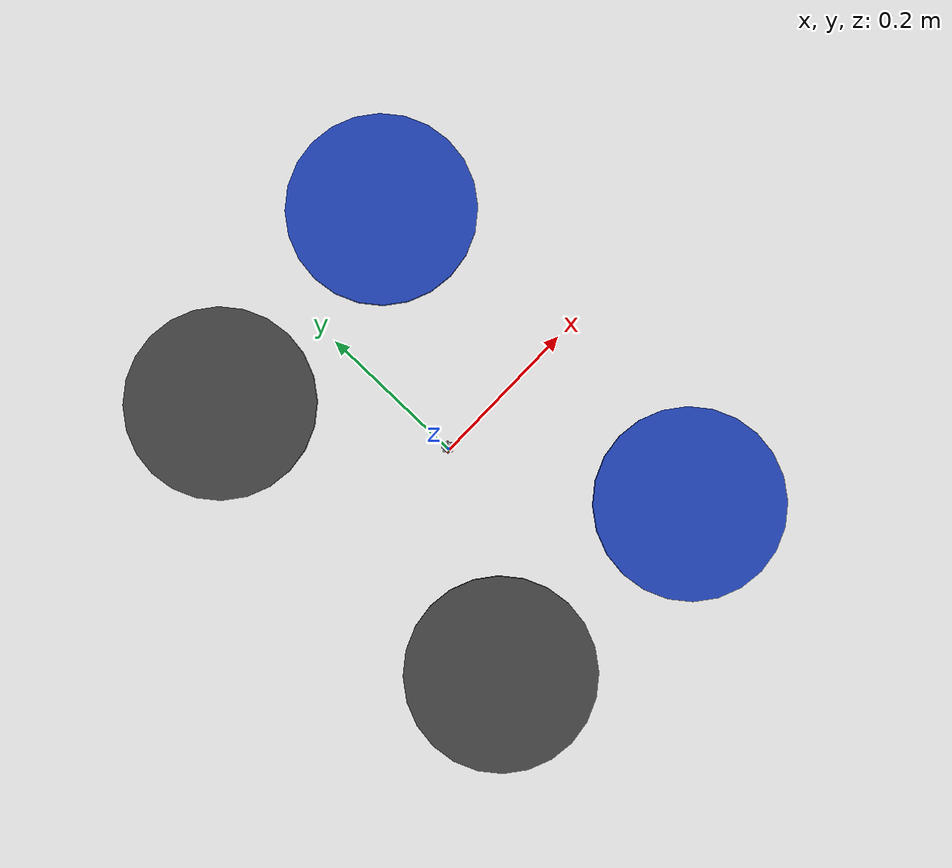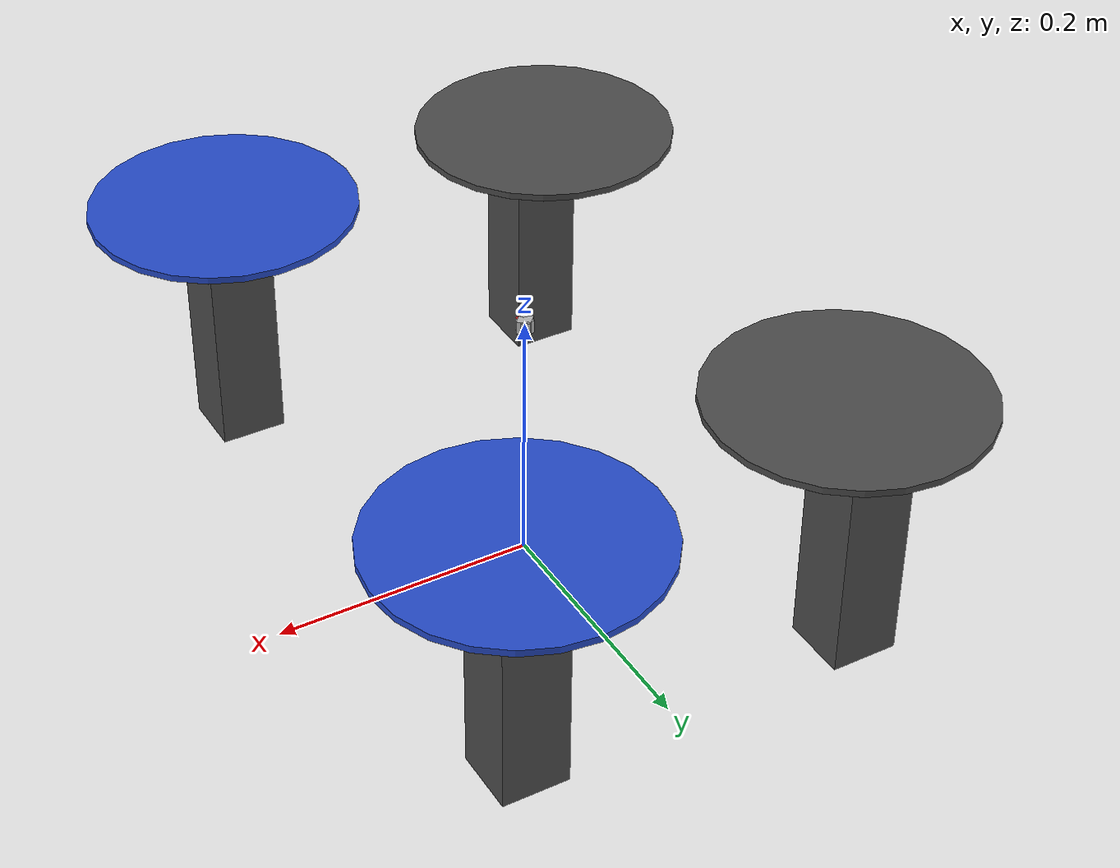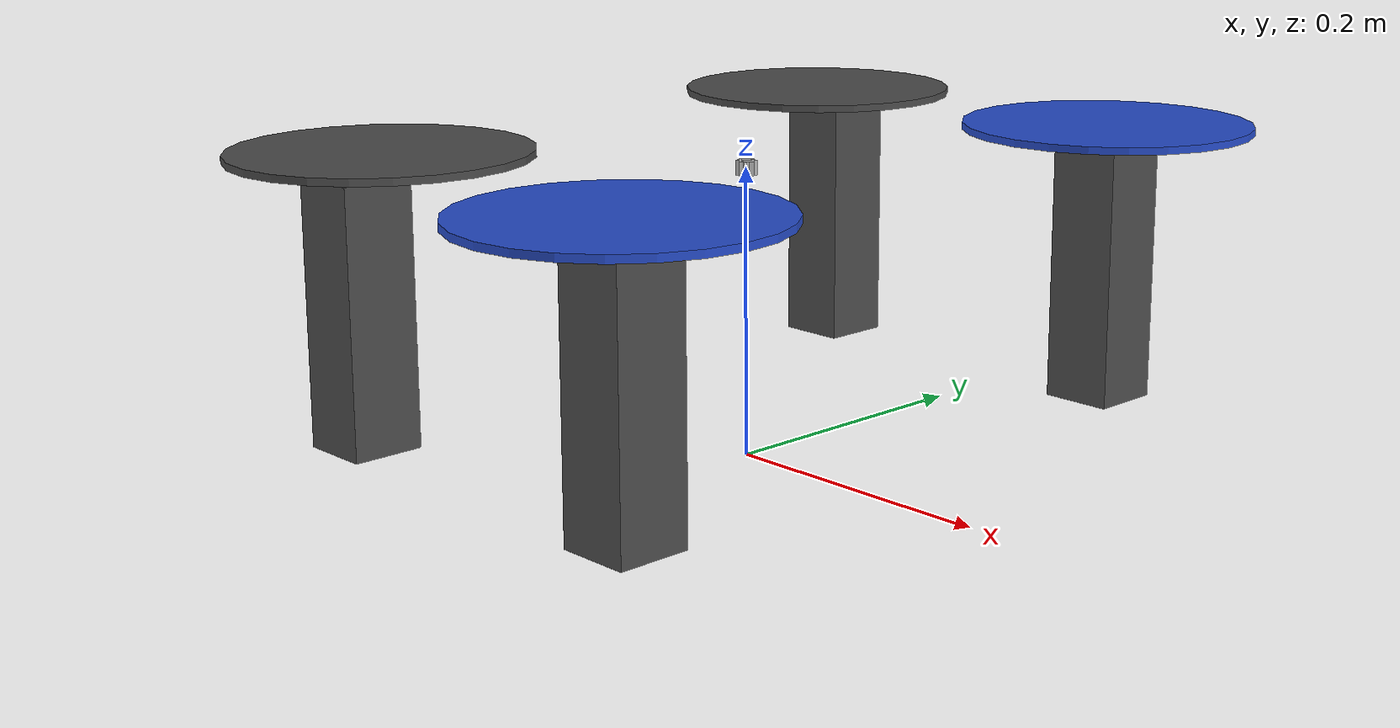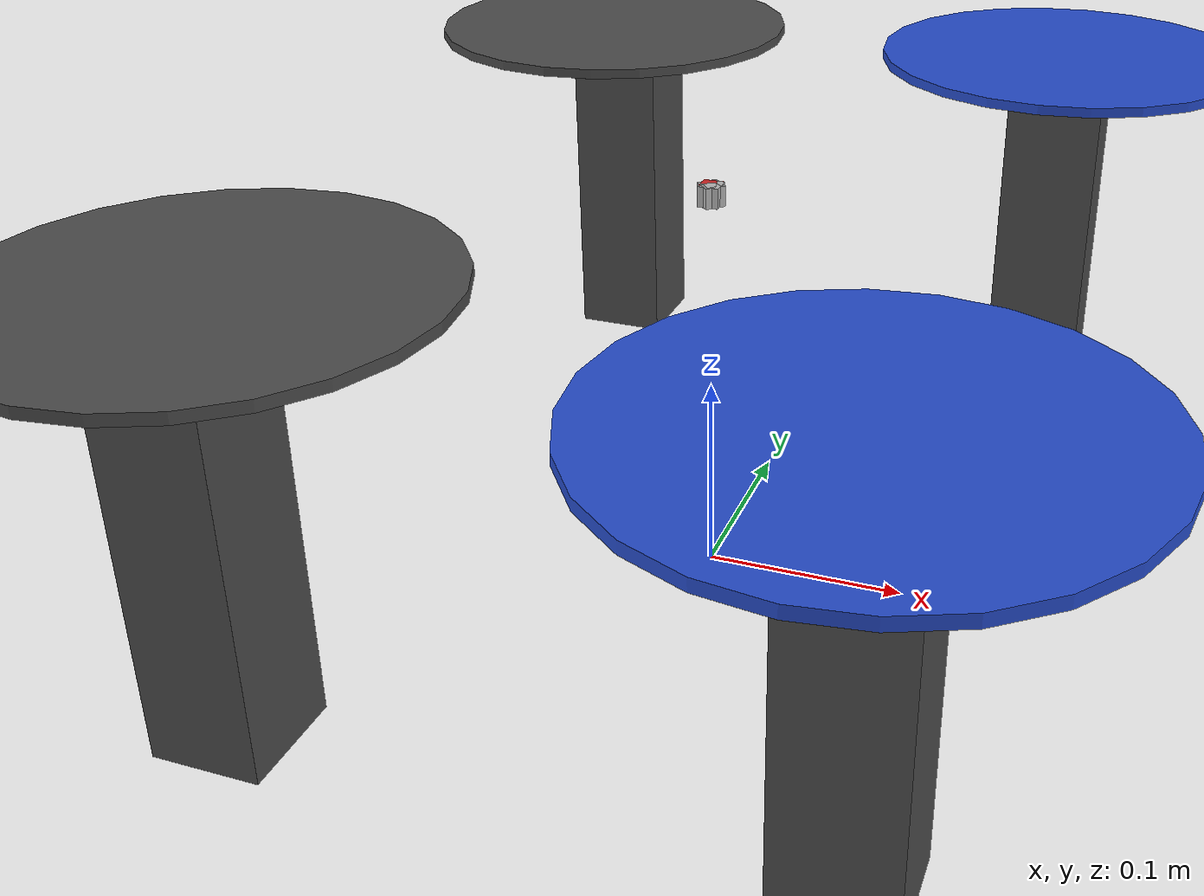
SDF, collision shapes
<?xml version='1.0'?>
<sdf version="1.6" >
  <model name="drone_with_sonar">
    <frame name='iris::__model__' attached_to='iris::base_link'>
        <pose relative_to='__model__'>0 0 0.194923 0 -0 0</pose>
      </frame>
      <link name='iris::base_link'>
        <velocity_decay>
          <linear>0</linear>
          <angular>0</angular>
        </velocity_decay>
        <inertial>
          <pose>0 0 0 0 -0 0</pose>
          <mass>1.5</mass>
          <inertia>
            <ixx>0.008</ixx>
            <ixy>0</ixy>
            <ixz>0</ixz>
            <iyy>0.015</iyy>
            <iyz>0</iyz>
            <izz>0.017</izz>
          </inertia>
        </inertial>
        <collision name='base_link_collision_fl'>
          <pose>0.13 0.22 -0.08 0 -0 0</pose>
          <geometry>
            <box>
              <size>0.05 0.05 0.18</size>
            </box>
          </geometry>
          <surface>
            <contact>
              <ode>
                <max_vel>100</max_vel>
                <min_depth>0.001</min_depth>
              </ode>
            </contact>
            <friction>
              <ode>
                <mu>1</mu>
                <mu2>1</mu2>
              </ode>
              <torsional>
                <ode/>
              </torsional>
            </friction>
            <bounce/>
          </surface>
          <max_contacts>10</max_contacts>
        </collision>
        <collision name='base_link_collision_fr'>
          <pose>0.13 -0.22 -0.08 0 -0 0</pose>
          <geometry>
            <box>
              <size>0.05 0.05 0.18</size>
            </box>
          </geometry>
          <surface>
            <contact>
              <ode>
                <max_vel>100</max_vel>
                <min_depth>0.001</min_depth>
              </ode>
            </contact>
            <friction>
              <ode>
                <mu>1</mu>
                <mu2>1</mu2>
              </ode>
              <torsional>
                <ode/>
              </torsional>
            </friction>
            <bounce/>
          </surface>
          <max_contacts>10</max_contacts>
        </collision>
        <collision name='base_link_collision_br'>
          <pose>-0.13 -0.22 -0.08 0 -0 0</pose>
          <geometry>
            <box>
              <size>0.05 0.05 0.18</size>
            </box>
          </geometry>
          <surface>
            <contact>
              <ode>
                <max_vel>100</max_vel>
                <min_depth>0.001</min_depth>
              </ode>
            </contact>
            <friction>
              <ode>
                <mu>1</mu>
                <mu2>1</mu2>
              </ode>
              <torsional>
                <ode/>
              </torsional>
            </friction>
            <bounce/>
          </surface>
          <max_contacts>10</max_contacts>
        </collision>
        <collision name='base_link_collision_bl'>
          <pose>-0.13 0.22 -0.08 0 -0 0</pose>
          <geometry>
            <box>
              <size>0.05 0.05 0.18</size>
            </box>
          </geometry>
          <surface>
            <contact>
              <ode>
                <max_vel>100</max_vel>
                <min_depth>0.001</min_depth>
              </ode>
            </contact>
            <friction>
              <ode>
                <mu>1</mu>
                <mu2>1</mu2>
              </ode>
              <torsional>
                <ode/>
              </torsional>
            </friction>
            <bounce/>
          </surface>
          <max_contacts>10</max_contacts>
        </collision>
        <visual name='base_link_visual'>
          <geometry>
            <mesh>
              <uri>model://iris_base/meshes/iris.dae</uri>
            </mesh>
          </geometry>
          <material>
            <script>
              <name>Gazebo/DarkGrey</name>
              <uri>__default__</uri>
            </script>
          </material>
        </visual>
        <visual name='front_left_leg_visual'>
          <pose>0.123 0.22 -0.11 0 -0 0</pose>
          <geometry>
            <cylinder>
              <radius>0.005</radius>
              <length>0.17</length>
            </cylinder>
          </geometry>
          <material>
            <script>
              <name>Gazebo/FlatBlack</name>
              <uri>file://media/materials/scripts/gazebo.material</uri>
            </script>
          </material>
        </visual>
        <visual name='front_right_leg_visual'>
          <pose>0.123 -0.22 -0.11 0 -0 0</pose>
          <geometry>
            <cylinder>
              <radius>0.005</radius>
              <length>0.17</length>
            </cylinder>
          </geometry>
          <material>
            <script>
              <name>Gazebo/FlatBlack</name>
              <uri>file://media/materials/scripts/gazebo.material</uri>
            </script>
          </material>
        </visual>
        <visual name='rear_left_leg_visual'>
          <pose>-0.14 0.21 -0.11 0 -0 0</pose>
          <geometry>
            <cylinder>
              <radius>0.005</radius>
              <length>0.17</length>
            </cylinder>
          </geometry>
          <material>
            <script>
              <name>Gazebo/FlatBlack</name>
              <uri>file://media/materials/scripts/gazebo.material</uri>
            </script>
          </material>
        </visual>
        <visual name='rear_right_leg_visual'>
          <pose>-0.14 -0.21 -0.11 0 -0 0</pose>
          <geometry>
            <cylinder>
              <radius>0.005</radius>
              <length>0.17</length>
            </cylinder>
          </geometry>
          <material>
            <script>
              <name>Gazebo/FlatBlack</name>
              <uri>file://media/materials/scripts/gazebo.material</uri>
            </script>
          </material>
        </visual>
        <pose relative_to='iris::__model__'>0 0 0 0 -0 0</pose>
        <self_collide>0</self_collide>
        <enable_wind>0</enable_wind>
        <kinematic>0</kinematic>
      </link>
      <link name='iris::iris/ground_truth/odometry_sensorgt_link'>
        <pose relative_to='iris::__model__'>0 0 0 0 -0 0</pose>
        <inertial>
          <pose>0 0 0 0 -0 0</pose>
          <mass>0.15</mass>
          <inertia>
            <ixx>0.0001</ixx>
            <ixy>0</ixy>
            <ixz>0</ixz>
            <iyy>0.0002</iyy>
            <iyz>0</iyz>
            <izz>0.0002</izz>
          </inertia>
        </inertial>
        <self_collide>0</self_collide>
        <enable_wind>0</enable_wind>
        <kinematic>0</kinematic>
      </link>
      <joint name='iris::iris/ground_truth/odometry_sensorgt_joint' type='revolute'>
        <child>iris::iris/ground_truth/odometry_sensorgt_link</child>
        <parent>iris::base_link</parent>
        <axis>
          <xyz expressed_in='iris::__model__'>0 0 1</xyz>
          <limit>
            <lower>0</lower>
            <upper>0</upper>
            <effort>0</effort>
            <velocity>0</velocity>
          </limit>
          <dynamics>
            <damping>1</damping>
            <spring_reference>0</spring_reference>
            <spring_stiffness>0</spring_stiffness>
          </dynamics>
        </axis>
        <physics>
          <ode>
            <implicit_spring_damper>1</implicit_spring_damper>
            <limit>
              <cfm>0</cfm>
              <erp>0.2</erp>
            </limit>
          </ode>
        </physics>
      </joint>
      <link name='iris::iris/imu_link'>
        <inertial>
          <pose>0 0 0 0 -0 0</pose>
          <mass>0.15</mass>
          <inertia>
            <ixx>1e-05</ixx>
            <ixy>0</ixy>
            <ixz>0</ixz>
            <iyy>2e-05</iyy>
            <iyz>0</iyz>
            <izz>2e-05</izz>
          </inertia>
        </inertial>
        <sensor name='imu_sensor' type='imu'>
          <pose>0 0 0 -3.14159 -0 0</pose>
          <always_on>1</always_on>
          <update_rate>1000</update_rate>
          <imu/>
        </sensor>
        <pose relative_to='iris::__model__'>0 0 0 0 -0 0</pose>
        <self_collide>0</self_collide>
        <enable_wind>0</enable_wind>
        <kinematic>0</kinematic>
      </link>
      <joint name='iris::iris/imu_joint' type='revolute'>
        <child>iris::iris/imu_link</child>
        <parent>iris::base_link</parent>
        <axis>
          <xyz expressed_in='iris::__model__'>0 0 1</xyz>
          <limit>
            <lower>0</lower>
            <upper>0</upper>
            <effort>0</effort>
            <velocity>0</velocity>
          </limit>
          <dynamics>
            <damping>1</damping>
            <spring_reference>0</spring_reference>
            <spring_stiffness>0</spring_stiffness>
          </dynamics>
        </axis>
        <physics>
          <ode>
            <implicit_spring_damper>1</implicit_spring_damper>
            <limit>
              <cfm>0</cfm>
              <erp>0.2</erp>
            </limit>
          </ode>
        </physics>
      </joint>
      <link name='iris::rotor_0'>
        <pose relative_to='iris::__model__'>0.13 -0.22 0.023 0 -0 0</pose>
        <inertial>
          <pose>0 0 0 0 -0 0</pose>
          <mass>0.025</mass>
          <inertia>
            <ixx>9.75e-06</ixx>
            <ixy>0</ixy>
            <ixz>0</ixz>
            <iyy>0.000166704</iyy>
            <iyz>0</iyz>
            <izz>0.000167604</izz>
          </inertia>
        </inertial>
        <collision name='rotor_0_collision'>
          <pose>0 0 0 0 -0 0</pose>
          <geometry>
            <cylinder>
              <length>0.005</length>
              <radius>0.1</radius>
            </cylinder>
          </geometry>
          <surface>
            <contact>
              <ode/>
            </contact>
            <friction>
              <ode/>
              <torsional>
                <ode/>
              </torsional>
            </friction>
            <bounce/>
          </surface>
          <max_contacts>10</max_contacts>
        </collision>
        <visual name='rotor_0_visual'>
          <pose>0 0 0 0 -0 0</pose>
          <geometry>
            <mesh>
              <scale>1 1 1</scale>
              <uri>model://iris_base/meshes/iris_prop_ccw.dae</uri>
            </mesh>
          </geometry>
          <material>
            <script>
              <name>Gazebo/Blue</name>
              <uri>__default__</uri>
            </script>
          </material>
        </visual>
        <gravity>1</gravity>
        <velocity_decay/>
        <self_collide>0</self_collide>
        <enable_wind>0</enable_wind>
        <kinematic>0</kinematic>
      </link>
      <joint name='iris::rotor_0_joint' type='revolute'>
        <child>iris::rotor_0</child>
        <parent>iris::base_link</parent>
        <axis>
          <xyz expressed_in='iris::__model__'>0 0 1</xyz>
          <limit>
            <lower>-1e+16</lower>
            <upper>1e+16</upper>
          </limit>
          <dynamics>
            <damping>0.004</damping>
            <spring_reference>0</spring_reference>
            <spring_stiffness>0</spring_stiffness>
          </dynamics>
        </axis>
        <physics>
          <ode>
            <implicit_spring_damper>1</implicit_spring_damper>
            <limit>
              <cfm>0</cfm>
              <erp>0.2</erp>
            </limit>
          </ode>
        </physics>
      </joint>
      <link name='iris::rotor_1'>
        <pose relative_to='iris::__model__'>-0.13 0.2 0.023 0 -0 0</pose>
        <inertial>
          <pose>0 0 0 0 -0 0</pose>
          <mass>0.025</mass>
          <inertia>
            <ixx>9.75e-06</ixx>
            <ixy>0</ixy>
            <ixz>0</ixz>
            <iyy>0.000166704</iyy>
            <iyz>0</iyz>
            <izz>0.000167604</izz>
          </inertia>
        </inertial>
        <collision name='rotor_1_collision'>
          <pose>0 0 0 0 -0 0</pose>
          <geometry>
            <cylinder>
              <length>0.005</length>
              <radius>0.1</radius>
            </cylinder>
          </geometry>
          <surface>
            <contact>
              <ode/>
            </contact>
            <friction>
              <ode/>
              <torsional>
                <ode/>
              </torsional>
            </friction>
            <bounce/>
          </surface>
          <max_contacts>10</max_contacts>
        </collision>
        <visual name='rotor_1_visual'>
          <pose>0 0 0 0 -0 0</pose>
          <geometry>
            <mesh>
              <scale>1 1 1</scale>
              <uri>model://iris_base/meshes/iris_prop_ccw.dae</uri>
            </mesh>
          </geometry>
          <material>
            <script>
              <name>Gazebo/DarkGrey</name>
              <uri>__default__</uri>
            </script>
          </material>
        </visual>
        <gravity>1</gravity>
        <velocity_decay/>
        <self_collide>0</self_collide>
        <enable_wind>0</enable_wind>
        <kinematic>0</kinematic>
      </link>
      <joint name='iris::rotor_1_joint' type='revolute'>
        <child>iris::rotor_1</child>
        <parent>iris::base_link</parent>
        <axis>
          <xyz expressed_in='iris::__model__'>0 0 1</xyz>
          <limit>
            <lower>-1e+16</lower>
            <upper>1e+16</upper>
          </limit>
          <dynamics>
            <damping>0.004</damping>
            <spring_reference>0</spring_reference>
            <spring_stiffness>0</spring_stiffness>
          </dynamics>
        </axis>
        <physics>
          <ode>
            <implicit_spring_damper>1</implicit_spring_damper>
            <limit>
              <cfm>0</cfm>
              <erp>0.2</erp>
            </limit>
          </ode>
        </physics>
      </joint>
      <link name='iris::rotor_2'>
        <pose relative_to='iris::__model__'>0.13 0.22 0.023 0 -0 0</pose>
        <inertial>
          <pose>0 0 0 0 -0 0</pose>
          <mass>0.025</mass>
          <inertia>
            <ixx>9.75e-06</ixx>
            <ixy>0</ixy>
            <ixz>0</ixz>
            <iyy>0.000166704</iyy>
            <iyz>0</iyz>
            <izz>0.000167604</izz>
          </inertia>
        </inertial>
        <collision name='rotor_2_collision'>
          <pose>0 0 0 0 -0 0</pose>
          <geometry>
            <cylinder>
              <length>0.005</length>
              <radius>0.1</radius>
            </cylinder>
          </geometry>
          <surface>
            <contact>
              <ode/>
            </contact>
            <friction>
              <ode/>
              <torsional>
                <ode/>
              </torsional>
            </friction>
            <bounce/>
          </surface>
          <max_contacts>10</max_contacts>
        </collision>
        <visual name='rotor_2_visual'>
          <pose>0 0 0 0 -0 0</pose>
          <geometry>
            <mesh>
              <scale>1 1 1</scale>
              <uri>model://iris_base/meshes/iris_prop_cw.dae</uri>
            </mesh>
          </geometry>
          <material>
            <script>
              <name>Gazebo/Blue</name>
              <uri>__default__</uri>
            </script>
          </material>
        </visual>
        <gravity>1</gravity>
        <velocity_decay/>
        <self_collide>0</self_collide>
        <enable_wind>0</enable_wind>
        <kinematic>0</kinematic>
      </link>
      <joint name='iris::rotor_2_joint' type='revolute'>
        <child>iris::rotor_2</child>
        <parent>iris::base_link</parent>
        <axis>
          <xyz expressed_in='iris::__model__'>0 0 1</xyz>
          <limit>
            <lower>-1e+16</lower>
            <upper>1e+16</upper>
          </limit>
          <dynamics>
            <damping>0.004</damping>
            <spring_reference>0</spring_reference>
            <spring_stiffness>0</spring_stiffness>
          </dynamics>
        </axis>
        <physics>
          <ode>
            <implicit_spring_damper>1</implicit_spring_damper>
            <limit>
              <cfm>0</cfm>
              <erp>0.2</erp>
            </limit>
          </ode>
        </physics>
      </joint>
      <link name='iris::rotor_3'>
        <pose relative_to='iris::__model__'>-0.13 -0.2 0.023 0 -0 0</pose>
        <inertial>
          <pose>0 0 0 0 -0 0</pose>
          <mass>0.025</mass>
          <inertia>
            <ixx>9.75e-06</ixx>
            <ixy>0</ixy>
            <ixz>0</ixz>
            <iyy>0.000166704</iyy>
            <iyz>0</iyz>
            <izz>0.000167604</izz>
          </inertia>
        </inertial>
        <collision name='rotor_3_collision'>
          <pose>0 0 0 0 -0 0</pose>
          <geometry>
            <cylinder>
              <length>0.005</length>
              <radius>0.1</radius>
            </cylinder>
          </geometry>
          <surface>
            <contact>
              <ode/>
            </contact>
            <friction>
              <ode/>
              <torsional>
                <ode/>
              </torsional>
            </friction>
            <bounce/>
          </surface>
          <max_contacts>10</max_contacts>
        </collision>
        <visual name='rotor_3_visual'>
          <pose>0 0 0 0 -0 0</pose>
          <geometry>
            <mesh>
              <scale>1 1 1</scale>
              <uri>model://iris_base/meshes/iris_prop_cw.dae</uri>
            </mesh>
          </geometry>
          <material>
            <script>
              <name>Gazebo/DarkGrey</name>
              <uri>__default__</uri>
            </script>
          </material>
        </visual>
        <gravity>1</gravity>
        <velocity_decay/>
        <self_collide>0</self_collide>
        <enable_wind>0</enable_wind>
        <kinematic>0</kinematic>
      </link>
      <joint name='iris::rotor_3_joint' type='revolute'>
        <child>iris::rotor_3</child>
        <parent>iris::base_link</parent>
        <axis>
          <xyz expressed_in='iris::__model__'>0 0 1</xyz>
          <limit>
            <lower>-1e+16</lower>
            <upper>1e+16</upper>
          </limit>
          <dynamics>
            <damping>0.004</damping>
            <spring_reference>0</spring_reference>
            <spring_stiffness>0</spring_stiffness>
          </dynamics>
        </axis>
        <physics>
          <ode>
            <implicit_spring_damper>1</implicit_spring_damper>
            <limit>
              <cfm>0</cfm>
              <erp>0.2</erp>
            </limit>
          </ode>
        </physics>
      </joint>
      <static>0</static>
	  <link name='base_sonar_front'>
		<pose>0 0 0.2 0 -0 0</pose>
        <collision name='sonar_collision'>
          <geometry>
            <box>
              <size>0.01 0.01 0.01</size>
            </box>
          </geometry>
          <max_contacts>10</max_contacts>
          <surface>
            <contact>
              <ode/>
            </contact>
            <bounce/>
            <friction>
              <torsional>
                <ode/>
              </torsional>
              <ode/>
            </friction>
          </surface>
        </collision>
        <visual name='visual'>
          <geometry>
            <box>
              <size>0.01 0.01 0.01</size>
            </box>
          </geometry>
          <material>
            <lighting>1</lighting>
            <script>
              <uri>file://media/materials/scripts/gazebo.material</uri>
              <name>Gazebo/Red</name>
            </script>
            <shader type='pixel'>
              <normal_map>__default__</normal_map>
            </shader>
            <ambient>1 0 0 0</ambient>
            <diffuse>0.7 0.7 0.7 1</diffuse>
            <specular>0.01 0.01 0.01 1</specular>
            <emissive>0 0 0 1</emissive>
          </material>
        </visual>
        <inertial>
          <mass>0.1</mass>
          <inertia>
            <ixx>0.001</ixx>
            <ixy>0</ixy>
            <ixz>0</ixz>
            <iyy>0.001</iyy>
            <iyz>0</iyz>
            <izz>0.001</izz>
          </inertia>
          <pose>0 0 0 0 -0 0</pose>
        </inertial>
        <sensor name='sonar_sensor' type='ray'>
          <visualize>0</visualize>
		  <visual name='visual'>
			  <material>
				<lighting>1</lighting>
				<script>
				  <uri>file://media/materials/scripts/gazebo.material</uri>
				  <name>Gazebo/Red</name>
				</script>
				<shader type='pixel'>
				  <normal_map>__default__</normal_map>
				</shader>
				<ambient>1 0 0 0</ambient>
				<diffuse>0.7 0.7 0.7 1</diffuse>
				<specular>0.01 0.01 0.01 1</specular>
				<emissive>0 0 0 1</emissive>
			  </material>
		  </visual>
          <update_rate>10</update_rate>
          <ray>
            <scan>
              <horizontal>
                <samples>10</samples>
                <resolution>1</resolution>
                <min_angle>-0.44505</min_angle>
                <max_angle>0.44505</max_angle>
              </horizontal>
              <vertical>
                <samples>10</samples>
                <resolution>1</resolution>
				<min_angle>-0.14835</min_angle>
                <max_angle>0.44505</max_angle>
              </vertical>
            </scan>
            <range>
              <min>0.4</min>
              <max>7</max>
              <resolution>0.02</resolution>
            </range>
          </ray>
          <plugin name='gazebo_ros_range2' filename='libgazebo_ros_range_iq.so'>
            <gaussianNoise>0.005</gaussianNoise>
            <alwaysOn>1</alwaysOn>
            <updateRate>50</updateRate>
            <topicName>/mavros/distance_sensor/front</topicName>
            <frameName>base_sonar_front</frameName>
            <radiation>INFRARED</radiation>
            <fov>0.2967</fov>
          </plugin>
        </sensor>
        <self_collide>0</self_collide>
        <enable_wind>0</enable_wind>
        <kinematic>0</kinematic>
      </link>
      <joint name='base_sonar_joint_front' type='fixed'>
        <pose>0 0 0 0 -0 0</pose>
        <parent>iris::base_link</parent>
        <child>base_sonar_front</child>
        <axis>
          <limit>
            <lower>0</lower>
            <upper>0</upper>
          </limit>
          <xyz expressed_in='__model__'>0 0 1</xyz>
        </axis>
      </joint>
	  <link name='base_sonar_frontright'>
		<pose>0 0 0.2 0 -0 -0.785</pose>
        <collision name='sonar_collision'>
          <geometry>
            <box>
              <size>0.01 0.01 0.01</size>
            </box>
          </geometry>
          <max_contacts>10</max_contacts>
          <surface>
            <contact>
              <ode/>
            </contact>
            <bounce/>
            <friction>
              <torsional>
                <ode/>
              </torsional>
              <ode/>
            </friction>
          </surface>
        </collision>
        <visual name='visual'>
          <geometry>
            <box>
              <size>0.01 0.01 0.01</size>
            </box>
          </geometry>
        </visual>
        <inertial>
          <mass>0.1</mass>
          <inertia>
            <ixx>0.001</ixx>
            <ixy>0</ixy>
            <ixz>0</ixz>
            <iyy>0.001</iyy>
            <iyz>0</iyz>
            <izz>0.001</izz>
          </inertia>
          <pose>0 0 0 0 -0 0</pose>
        </inertial>
        <sensor name='sonar_sensor' type='ray'>
          <visualize>0</visualize>
          <update_rate>10</update_rate>
          <ray>
            <scan>
              <horizontal>
                <samples>10</samples>
                <resolution>1</resolution>
                <min_angle>-0.44505</min_angle>
                <max_angle>0.44505</max_angle>
              </horizontal>
              <vertical>
                <samples>10</samples>
                <resolution>1</resolution>
				<min_angle>-0.14835</min_angle>
                <max_angle>0.14835</max_angle>
              </vertical>
            </scan>
            <range>
              <min>0.4</min>
              <max>7</max>
              <resolution>0.02</resolution>
            </range>
          </ray>
          <plugin name='gazebo_ros_range2' filename='libgazebo_ros_range_iq.so'>
            <gaussianNoise>0.005</gaussianNoise>
            <alwaysOn>1</alwaysOn>
            <updateRate>50</updateRate>
            <topicName>/mavros/distance_sensor/frontright</topicName>
            <frameName>base_sonar_frontright</frameName>
            <radiation>INFRARED</radiation>
            <fov>0.2967</fov>
          </plugin>
        </sensor>
        <self_collide>0</self_collide>
        <enable_wind>0</enable_wind>
        <kinematic>0</kinematic>
      </link>
      <joint name='base_sonar_joint_frontright' type='fixed'>
        <pose>0 0 0 0 -0 0</pose>
        <parent>iris::base_link</parent>
        <child>base_sonar_frontright</child>
        <axis>
          <limit>
            <lower>0</lower>
            <upper>0</upper>
          </limit>
          <xyz expressed_in='__model__'>0 0 1</xyz>
        </axis>
      </joint>
	  <link name='base_sonar_frontleft'>
		<pose>0 0 0.2 0 -0 0.785</pose>
        <collision name='sonar_collision'>
          <geometry>
            <box>
              <size>0.01 0.01 0.01</size>
            </box>
          </geometry>
          <max_contacts>10</max_contacts>
          <surface>
            <contact>
              <ode/>
            </contact>
            <bounce/>
            <friction>
              <torsional>
                <ode/>
              </torsional>
              <ode/>
            </friction>
          </surface>
        </collision>
        <visual name='visual'>
          <geometry>
            <box>
              <size>0.01 0.01 0.01</size>
            </box>
          </geometry>
        </visual>
        <inertial>
          <mass>0.1</mass>
          <inertia>
            <ixx>0.001</ixx>
            <ixy>0</ixy>
            <ixz>0</ixz>
            <iyy>0.001</iyy>
            <iyz>0</iyz>
            <izz>0.001</izz>
          </inertia>
          <pose>0 0 0 0 -0 0</pose>
        </inertial>
        <sensor name='sonar_sensor' type='ray'>
          <visualize>0</visualize>
          <update_rate>10</update_rate>
          <ray>
            <scan>
              <horizontal>
                <samples>10</samples>
                <resolution>1</resolution>
                <min_angle>-0.44505</min_angle>
                <max_angle>0.44505</max_angle>
              </horizontal>
              <vertical>
                <samples>10</samples>
                <resolution>1</resolution>
				<min_angle>-0.14835</min_angle>
                <max_angle>0.14835</max_angle>
              </vertical>
            </scan>
            <range>
              <min>0.4</min>
              <max>7</max>
              <resolution>0.02</resolution>
            </range>
          </ray>
          <plugin name='gazebo_ros_range2' filename='libgazebo_ros_range_iq.so'>
            <gaussianNoise>0.005</gaussianNoise>
            <alwaysOn>1</alwaysOn>
            <updateRate>50</updateRate>
            <topicName>/mavros/distance_sensor/frontleft</topicName>
            <frameName>base_sonar_frontleft</frameName>
            <radiation>INFRARED</radiation>
            <fov>0.2967</fov>
          </plugin>
        </sensor>
        <self_collide>0</self_collide>
        <enable_wind>0</enable_wind>
        <kinematic>0</kinematic>
      </link>
      <joint name='base_sonar_joint_frontleft' type='fixed'>
		<pose>0 0 0 0 -0 0</pose>
        <parent>iris::base_link</parent>
        <child>base_sonar_frontleft</child>
        <axis>
          <limit>
            <lower>0</lower>
            <upper>0</upper>
          </limit>
          <xyz expressed_in='__model__'>0 0 1</xyz>
        </axis>
      </joint>
      <link name='base_sonar_left'>
		<pose>0 0 0.2 0 -0 1.57</pose>
        <collision name='sonar_collision'>
          <geometry>
            <box>
              <size>0.01 0.01 0.01</size>
            </box>
          </geometry>
          <max_contacts>10</max_contacts>
          <surface>
            <contact>
              <ode/>
            </contact>
            <bounce/>
            <friction>
              <torsional>
                <ode/>
              </torsional>
              <ode/>
            </friction>
          </surface>
        </collision>
        <visual name='visual'>
          <geometry>
            <box>
              <size>0.01 0.01 0.01</size>
            </box>
          </geometry>
        </visual>
        <inertial>
          <mass>0.1</mass>
          <inertia>
            <ixx>0.001</ixx>
            <ixy>0</ixy>
            <ixz>0</ixz>
            <iyy>0.001</iyy>
            <iyz>0</iyz>
            <izz>0.001</izz>
          </inertia>
          <pose>0 0 0 0 -0 0</pose>
        </inertial>
        <sensor name='sonar_sensor' type='ray'>
          <visualize>0</visualize>
          <update_rate>10</update_rate>
          <ray>
            <scan>
              <horizontal>
                <samples>10</samples>
                <resolution>1</resolution>
                <min_angle>-0.44505</min_angle>
                <max_angle>0.44505</max_angle>
              </horizontal>
              <vertical>
                <samples>10</samples>
                <resolution>1</resolution>
                <min_angle>-0.14835</min_angle>
                <max_angle>0.14835</max_angle>
              </vertical>
            </scan>
            <range>
              <min>0.4</min>
              <max>7</max>
              <resolution>0.02</resolution>
            </range>
          </ray>
          <plugin name='gazebo_ros_range2' filename='libgazebo_ros_range_iq.so'>
            <gaussianNoise>0.005</gaussianNoise>
            <alwaysOn>1</alwaysOn>
            <updateRate>50</updateRate>
            <topicName>/mavros/distance_sensor/left</topicName>
            <frameName>base_sonar_left</frameName>
            <radiation>INFRARED</radiation>
            <fov>0.2967</fov>
          </plugin>
        </sensor>
        <self_collide>0</self_collide>
        <enable_wind>0</enable_wind>
        <kinematic>0</kinematic>
      </link>
      <joint name='base_sonar_joint_left' type='fixed'>
        <pose>0 0 0 0 -0 0</pose>
        <parent>iris::base_link</parent>
        <child>base_sonar_left</child>
        <axis>
          <limit>
            <lower>0</lower>
            <upper>0</upper>
          </limit>
          <xyz expressed_in='__model__'>0 0 1</xyz>
        </axis>
      </joint>
      <link name='base_sonar_right'>
		<pose>0 0 0.2 0 0 -1.57</pose>
        <collision name='sonar_collision'>
          <geometry>
            <box>
              <size>0.01 0.01 0.01</size>
            </box>
          </geometry>
          <max_contacts>10</max_contacts>
          <surface>
            <contact>
              <ode/>
            </contact>
            <bounce/>
            <friction>
              <torsional>
                <ode/>
              </torsional>
              <ode/>
            </friction>
          </surface>
        </collision>
        <visual name='visual'>
          <geometry>
            <box>
              <size>0.01 0.01 0.01</size>
            </box>
          </geometry>
        </visual>
        <inertial>
          <mass>0.1</mass>
          <inertia>
            <ixx>0.001</ixx>
            <ixy>0</ixy>
            <ixz>0</ixz>
            <iyy>0.001</iyy>
            <iyz>0</iyz>
            <izz>0.001</izz>
          </inertia>
          <pose>0 0 0 0 -0 0</pose>
        </inertial>
        <sensor name='sonar_sensor' type='ray'>
          <visualize>0</visualize>
          <update_rate>10</update_rate>
          <ray>
            <scan>
              <horizontal>
                <samples>10</samples>
                <resolution>1</resolution>
                <min_angle>-0.44505</min_angle>
                <max_angle>0.44505</max_angle>
              </horizontal>
              <vertical>
                <samples>10</samples>
                <resolution>1</resolution>
                <min_angle>-0.14835</min_angle>
                <max_angle>0.14835</max_angle>
              </vertical>
            </scan>
            <range>
              <min>0.4</min>
              <max>7</max>
              <resolution>0.02</resolution>
            </range>
          </ray>
          <plugin name='gazebo_ros_range2' filename='libgazebo_ros_range_iq.so'>
            <gaussianNoise>0.005</gaussianNoise>
            <alwaysOn>1</alwaysOn>
            <updateRate>50</updateRate>
            <topicName>/mavros/distance_sensor/right</topicName>
            <frameName>base_sonar_right</frameName>
            <radiation>INFRARED</radiation>
            <fov>0.2967</fov>
          </plugin>
        </sensor>
        <self_collide>0</self_collide>
        <enable_wind>0</enable_wind>
        <kinematic>0</kinematic>
      </link>
      <joint name='base_sonar_joint_right' type='fixed'>
        <pose>0 0 0 0 -0 0</pose>
        <parent>iris::base_link</parent>
        <child>base_sonar_right</child>
        <axis>
          <limit>
            <lower>0</lower>
            <upper>0</upper>
          </limit>
          <xyz expressed_in='__model__'>0 0 1</xyz>
        </axis>
      </joint>
      <link name='base_sonar_back'>
		<pose>0 0 0.2 0 -0 3.14</pose>
        <collision name='sonar_collision'>
          <geometry>
            <box>
              <size>0.01 0.01 0.01</size>
            </box>
          </geometry>
          <max_contacts>10</max_contacts>
          <surface>
            <contact>
              <ode/>
            </contact>
            <bounce/>
            <friction>
              <torsional>
                <ode/>
              </torsional>
              <ode/>
            </friction>
          </surface>
        </collision>
        <visual name='visual'>
          <geometry>
            <box>
              <size>0.01 0.01 0.01</size>
            </box>
          </geometry>
        </visual>
        <inertial>
          <mass>0.1</mass>
          <inertia>
            <ixx>0.001</ixx>
            <ixy>0</ixy>
            <ixz>0</ixz>
            <iyy>0.001</iyy>
            <iyz>0</iyz>
            <izz>0.001</izz>
          </inertia>
          <pose>0 0 0 0 -0 0</pose>
        </inertial>
        <sensor name='sonar_sensor' type='ray'>
          <visualize>0</visualize>
          <update_rate>10</update_rate>
          <ray>
            <scan>
              <horizontal>
                <samples>10</samples>
                <resolution>1</resolution>
                <min_angle>-0.44505</min_angle>
                <max_angle>0.44505</max_angle>
              </horizontal>
              <vertical>
                <samples>10</samples>
                <resolution>1</resolution>
                <min_angle>-0.14835</min_angle>
                <max_angle>0.14835</max_angle>
              </vertical>
            </scan>
            <range>
              <min>0.4</min>
              <max>7</max>
              <resolution>0.02</resolution>
            </range>
          </ray>
          <plugin name='gazebo_ros_range2' filename='libgazebo_ros_range_iq.so'>
            <gaussianNoise>0.005</gaussianNoise>
            <alwaysOn>1</alwaysOn>
            <updateRate>50</updateRate>
            <topicName>/mavros/distance_sensor/back</topicName>
            <frameName>base_sonar_back</frameName>
            <radiation>INFRARED</radiation>
            <fov>0.2967</fov>
          </plugin>
        </sensor>
        <self_collide>0</self_collide>
        <enable_wind>0</enable_wind>
        <kinematic>0</kinematic>
      </link>
      <joint name='base_sonar_joint_back' type='fixed'>
        <pose>0 0 0 0 -0 0</pose>
        <parent>iris::base_link</parent>
        <child>base_sonar_back</child>
        <axis>
          <limit>
            <lower>0</lower>
            <upper>0</upper>
          </limit>
          <xyz expressed_in='__model__'>0 0 1</xyz>
        </axis>
      </joint>
	  <link name='base_sonar_backright'>
		<pose>0 0 0.2 0 -0 -2.355</pose>
        <collision name='sonar_collision'>
          <geometry>
            <box>
              <size>0.01 0.01 0.01</size>
            </box>
          </geometry>
          <max_contacts>10</max_contacts>
          <surface>
            <contact>
              <ode/>
            </contact>
            <bounce/>
            <friction>
              <torsional>
                <ode/>
              </torsional>
              <ode/>
            </friction>
          </surface>
        </collision>
        <visual name='visual'>
          <geometry>
            <box>
              <size>0.01 0.01 0.01</size>
            </box>
          </geometry>
        </visual>
        <inertial>
          <mass>0.1</mass>
          <inertia>
            <ixx>0.001</ixx>
            <ixy>0</ixy>
            <ixz>0</ixz>
            <iyy>0.001</iyy>
            <iyz>0</iyz>
            <izz>0.001</izz>
          </inertia>
          <pose>0 0 0 0 -0 0</pose>
        </inertial>
        <sensor name='sonar_sensor' type='ray'>
          <visualize>0</visualize>
          <update_rate>10</update_rate>
          <ray>
            <scan>
              <horizontal>
                <samples>10</samples>
                <resolution>1</resolution>
                <min_angle>-0.44505</min_angle>
                <max_angle>0.44505</max_angle>
              </horizontal>
              <vertical>
                <samples>10</samples>
                <resolution>1</resolution>
                <min_angle>-0.14835</min_angle>
                <max_angle>0.14835</max_angle>
              </vertical>
            </scan>
            <range>
              <min>0.4</min>
              <max>7</max>
              <resolution>0.02</resolution>
            </range>
          </ray>
          <plugin name='gazebo_ros_range2' filename='libgazebo_ros_range_iq.so'>
            <gaussianNoise>0.005</gaussianNoise>
            <alwaysOn>1</alwaysOn>
            <updateRate>50</updateRate>
            <topicName>/mavros/distance_sensor/backright</topicName>
            <frameName>base_sonar_backright</frameName>
            <radiation>INFRARED</radiation>
            <fov>0.2967</fov>
          </plugin>
        </sensor>
        <self_collide>0</self_collide>
        <enable_wind>0</enable_wind>
        <kinematic>0</kinematic>
      </link>
      <joint name='base_sonar_joint_backright' type='fixed'>
        <pose>0 0 0 0 -0 0</pose>
        <parent>iris::base_link</parent>
        <child>base_sonar_backright</child>
        <axis>
          <limit>
            <lower>0</lower>
            <upper>0</upper>
          </limit>
          <xyz expressed_in='__model__'>0 0 1</xyz>
        </axis>
      </joint>
	  <link name='base_sonar_backleft'>
		<pose>0 0 0.2 0 -0 2.355</pose>
        <collision name='sonar_collision'>
          <geometry>
            <box>
              <size>0.01 0.01 0.01</size>
            </box>
          </geometry>
          <max_contacts>10</max_contacts>
          <surface>
            <contact>
              <ode/>
            </contact>
            <bounce/>
            <friction>
              <torsional>
                <ode/>
              </torsional>
              <ode/>
            </friction>
          </surface>
        </collision>
        <visual name='visual'>
          <geometry>
            <box>
              <size>0.01 0.01 0.01</size>
            </box>
          </geometry>
        </visual>
        <inertial>
          <mass>0.1</mass>
          <inertia>
            <ixx>0.001</ixx>
            <ixy>0</ixy>
            <ixz>0</ixz>
            <iyy>0.001</iyy>
            <iyz>0</iyz>
            <izz>0.001</izz>
          </inertia>
          <pose>0 0 0 0 -0 0</pose>
        </inertial>
        <sensor name='sonar_sensor' type='ray'>
          <visualize>0</visualize>
          <update_rate>10</update_rate>
          <ray>
            <scan>
              <horizontal>
                <samples>10</samples>
                <resolution>1</resolution>
                <min_angle>-0.44505</min_angle>
                <max_angle>0.44505</max_angle>
              </horizontal>
              <vertical>
                <samples>10</samples>
                <resolution>1</resolution>
                <min_angle>-0.14835</min_angle>
                <max_angle>0.14835</max_angle>
              </vertical>
            </scan>
            <range>
              <min>0.4</min>
              <max>7</max>
              <resolution>0.02</resolution>
            </range>
          </ray>
          <plugin name='gazebo_ros_range2' filename='libgazebo_ros_range_iq.so'>
            <gaussianNoise>0.005</gaussianNoise>
            <alwaysOn>1</alwaysOn>
            <updateRate>50</updateRate>
            <topicName>/mavros/distance_sensor/backleft</topicName>
            <frameName>base_sonar_backleft</frameName>
            <radiation>INFRARED</radiation>
            <fov>0.2967</fov>
          </plugin>
        </sensor>
        <self_collide>0</self_collide>
        <enable_wind>0</enable_wind>
        <kinematic>0</kinematic>
      </link>
      <joint name='base_sonar_joint_backleft' type='fixed'>
        <pose>0 0 0 0 -0 0</pose>
        <parent>iris::base_link</parent>
        <child>base_sonar_backleft</child>
        <axis>
          <limit>
            <lower>0</lower>
            <upper>0</upper>
          </limit>
          <xyz expressed_in='__model__'>0 0 1</xyz>
        </axis>
      </joint>

	  <visual name='drone_front_tip'>
        <pose>0.18 0.02 0 0 -0 0</pose>
        <geometry>
          <sphere>
            <radius>0.1</radius>
          </sphere>
        </geometry>
		<material>
            <lighting>1</lighting>
            <script>
              <uri>file://media/materials/scripts/gazebo.material</uri>
              <name>Gazebo/Red</name>
            </script>
          </material>
      </visual>

	  <link name="cam_link">
		<pose>0 0 -0.02 0 0 0 </pose>
		<inertial>
			<mass>0.01</mass>
			<inertia>
			  <ixx>0.001</ixx>
			  <iyy>0.001</iyy>
			  <izz>0.001</izz>
			</inertia>
		</inertial>

		<visual name='cam_link'>
			<pose>0 0 0.15 0 1.5707 0</pose>
			<geometry>
				<cylinder>
					<radius>.005</radius>
					<length>.018</length>
				</cylinder>
			</geometry>
		</visual>

		<sensor name="cam" type="camera" >
		  <pose>0 0 0.15 0 0 0</pose>
		  <camera>
			<horizontal_fov>1.2</horizontal_fov>
			<image>
			  <width>640</width>
			  <height>480</height>
			</image>
			<clip>
			  <near>0.1</near>
			  <far>1000</far>
			</clip>
		  </camera>
		  <always_on>1</always_on>
		  <update_rate>30</update_rate>
		  <visualize>true</visualize>
		  <plugin name="camera_controller" filename="libgazebo_ros_camera.so">
			<always_on>true</always_on>
			<update_rate>30</update_rate>
			<cameraName>webcam</cameraName>
			<imageTopicName>image_raw</imageTopicName>
			<cameraInfoTopicName>camera_info</cameraInfoTopicName>
			<frameName>camera_link</frameName>
		  </plugin>
		</sensor>
	  </link>
	  <joint name="camera_mount" type="fixed">
		  <child>cam_link</child>
		  <parent>iris::base_link</parent>
		  <axis>
			<xyz>0 0 1</xyz>
			<limit>
			  <upper>0</upper>
			  <lower>0</lower>
			</limit>
		  </axis>
	  </joint>

      <plugin name='rotor_0_blade_1' filename='libLiftDragPlugin.so'>
        <a0>0.3</a0>
        <alpha_stall>1.4</alpha_stall>
        <cla>4.2500</cla>
        <cda>0.10</cda>
        <cma>0.00</cma>
        <cla_stall>-0.025</cla_stall>
        <cda_stall>0.0</cda_stall>
        <cma_stall>0.0</cma_stall>
        <area>0.002</area>
        <air_density>1.2041</air_density>
        <cp>0.084 0 0</cp>
        <forward>0 1 0</forward>
        <upward>0 0 1</upward>
        <link_name>iris::rotor_0</link_name>
      </plugin>
      <plugin name='rotor_0_blade_2' filename='libLiftDragPlugin.so'>
        <a0>0.3</a0>
        <alpha_stall>1.4</alpha_stall>
        <cla>4.2500</cla>
        <cda>0.10</cda>
        <cma>0.00</cma>
        <cla_stall>-0.025</cla_stall>
        <cda_stall>0.0</cda_stall>
        <cma_stall>0.0</cma_stall>
        <area>0.002</area>
        <air_density>1.2041</air_density>
        <cp>-0.084 0 0</cp>
        <forward>0 -1 0</forward>
        <upward>0 0 1</upward>
        <link_name>iris::rotor_0</link_name>
      </plugin>
      <plugin name='rotor_1_blade_1' filename='libLiftDragPlugin.so'>
        <a0>0.3</a0>
        <alpha_stall>1.4</alpha_stall>
        <cla>4.2500</cla>
        <cda>0.10</cda>
        <cma>0.00</cma>
        <cla_stall>-0.025</cla_stall>
        <cda_stall>0.0</cda_stall>
        <cma_stall>0.0</cma_stall>
        <area>0.002</area>
        <air_density>1.2041</air_density>
        <cp>0.084 0 0</cp>
        <forward>0 1 0</forward>
        <upward>0 0 1</upward>
        <link_name>iris::rotor_1</link_name>
      </plugin>
      <plugin name='rotor_1_blade_2' filename='libLiftDragPlugin.so'>
        <a0>0.3</a0>
        <alpha_stall>1.4</alpha_stall>
        <cla>4.2500</cla>
        <cda>0.10</cda>
        <cma>0.00</cma>
        <cla_stall>-0.025</cla_stall>
        <cda_stall>0.0</cda_stall>
        <cma_stall>0.0</cma_stall>
        <area>0.002</area>
        <air_density>1.2041</air_density>
        <cp>-0.084 0 0</cp>
        <forward>0 -1 0</forward>
        <upward>0 0 1</upward>
        <link_name>iris::rotor_1</link_name>
      </plugin>
      <plugin name='rotor_2_blade_1' filename='libLiftDragPlugin.so'>
        <a0>0.3</a0>
        <alpha_stall>1.4</alpha_stall>
        <cla>4.2500</cla>
        <cda>0.10</cda>
        <cma>0.00</cma>
        <cla_stall>-0.025</cla_stall>
        <cda_stall>0.0</cda_stall>
        <cma_stall>0.0</cma_stall>
        <area>0.002</area>
        <air_density>1.2041</air_density>
        <cp>0.084 0 0</cp>
        <forward>0 -1 0</forward>
        <upward>0 0 1</upward>
        <link_name>iris::rotor_2</link_name>
      </plugin>
      <plugin name='rotor_2_blade_2' filename='libLiftDragPlugin.so'>
        <a0>0.3</a0>
        <alpha_stall>1.4</alpha_stall>
        <cla>4.2500</cla>
        <cda>0.10</cda>
        <cma>0.00</cma>
        <cla_stall>-0.025</cla_stall>
        <cda_stall>0.0</cda_stall>
        <cma_stall>0.0</cma_stall>
        <area>0.002</area>
        <air_density>1.2041</air_density>
        <cp>-0.084 0 0</cp>
        <forward>0 1 0</forward>
        <upward>0 0 1</upward>
        <link_name>iris::rotor_2</link_name>
      </plugin>
      <plugin name='rotor_3_blade_1' filename='libLiftDragPlugin.so'>
        <a0>0.3</a0>
        <alpha_stall>1.4</alpha_stall>
        <cla>4.2500</cla>
        <cda>0.10</cda>
        <cma>0.00</cma>
        <cla_stall>-0.025</cla_stall>
        <cda_stall>0.0</cda_stall>
        <cma_stall>0.0</cma_stall>
        <area>0.002</area>
        <air_density>1.2041</air_density>
        <cp>0.084 0 0</cp>
        <forward>0 -1 0</forward>
        <upward>0 0 1</upward>
        <link_name>iris::rotor_3</link_name>
      </plugin>
      <plugin name='rotor_3_blade_2' filename='libLiftDragPlugin.so'>
        <a0>0.3</a0>
        <alpha_stall>1.4</alpha_stall>
        <cla>4.2500</cla>
        <cda>0.10</cda>
        <cma>0.00</cma>
        <cla_stall>-0.025</cla_stall>
        <cda_stall>0.0</cda_stall>
        <cma_stall>0.0</cma_stall>
        <area>0.002</area>
        <air_density>1.2041</air_density>
        <cp>-0.084 0 0</cp>
        <forward>0 1 0</forward>
        <upward>0 0 1</upward>
        <link_name>iris::rotor_3</link_name>
      </plugin>
      <plugin name='arducopter_plugin' filename='libArduPilotPlugin.so'>
        <fdm_addr>127.0.0.1</fdm_addr>
        <fdm_port_in>9002</fdm_port_in>
        <fdm_port_out>9003</fdm_port_out>
        <modelXYZToAirplaneXForwardZDown>0 0 0 3.141593 0 0</modelXYZToAirplaneXForwardZDown>
        <gazeboXYZToNED>0 0 0 3.141593 0 0</gazeboXYZToNED>
        <imuName>iris::iris/imu_link::imu_sensor</imuName>
        <connectionTimeoutMaxCount>5</connectionTimeoutMaxCount>
        <control channel='0'>
          <type>VELOCITY</type>
          <offset>0</offset>
          <p_gain>0.20</p_gain>
          <i_gain>0</i_gain>
          <d_gain>0</d_gain>
          <i_max>0</i_max>
          <i_min>0</i_min>
          <cmd_max>2.5</cmd_max>
          <cmd_min>-2.5</cmd_min>
          <jointName>iris::rotor_0_joint</jointName>
          <multiplier>838</multiplier>
          <controlVelocitySlowdownSim>1</controlVelocitySlowdownSim>
        </control>
        <control channel='1'>
          <type>VELOCITY</type>
          <offset>0</offset>
          <p_gain>0.20</p_gain>
          <i_gain>0</i_gain>
          <d_gain>0</d_gain>
          <i_max>0</i_max>
          <i_min>0</i_min>
          <cmd_max>2.5</cmd_max>
          <cmd_min>-2.5</cmd_min>
          <jointName>iris::rotor_1_joint</jointName>
          <multiplier>838</multiplier>
          <controlVelocitySlowdownSim>1</controlVelocitySlowdownSim>
        </control>
        <control channel='2'>
          <type>VELOCITY</type>
          <offset>0</offset>
          <p_gain>0.20</p_gain>
          <i_gain>0</i_gain>
          <d_gain>0</d_gain>
          <i_max>0</i_max>
          <i_min>0</i_min>
          <cmd_max>2.5</cmd_max>
          <cmd_min>-2.5</cmd_min>
          <jointName>iris::rotor_2_joint</jointName>
          <multiplier>-838</multiplier>
          <controlVelocitySlowdownSim>1</controlVelocitySlowdownSim>
        </control>
        <control channel='3'>
          <type>VELOCITY</type>
          <offset>0</offset>
          <p_gain>0.20</p_gain>
          <i_gain>0</i_gain>
          <d_gain>0</d_gain>
          <i_max>0</i_max>
          <i_min>0</i_min>
          <cmd_max>2.5</cmd_max>
          <cmd_min>-2.5</cmd_min>
          <jointName>iris::rotor_3_joint</jointName>
          <multiplier>-838</multiplier>
          <controlVelocitySlowdownSim>1</controlVelocitySlowdownSim>
        </control>
      </plugin>

  </model>
</sdf>
